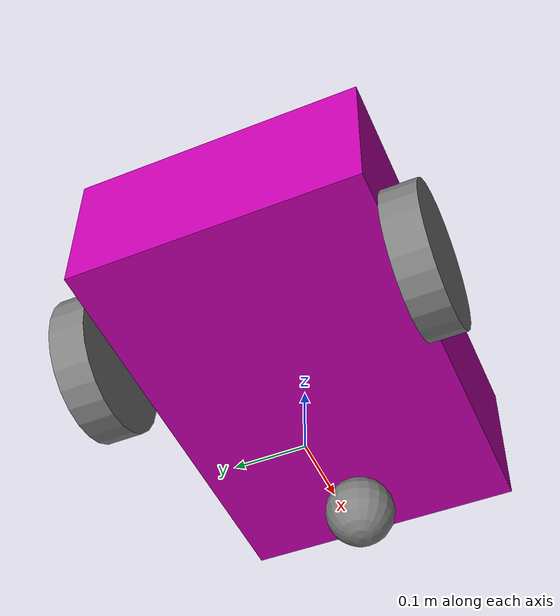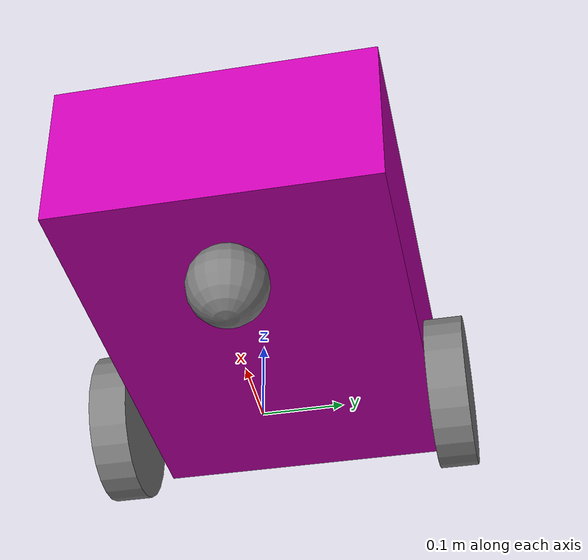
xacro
<?xml version="1.0"?>
<robot xmlns:xacro="http://www.ros.org/wiki/xacro">

#Include connected files
    <xacro:include filename="inertial_macros.xacro" />

#Define colours
    <material name="grey">
        <color rgba="0.5 0.5 0.5 1" />
    </material>

    <material name="purple">
        <color rgba="0.8 0 0.7 1" />
    </material>

    <material name="white">
        <color rgba ="1 1 1 1" />
    </material>

#LINKS

    <!-- ROBOT FOOTPRINT LINK -->
    <link name="base_footprint" />

    <!-- ROBOT BODY LINK -->
    <link name="base_link">
        <visual>
            <geometry>
                <box size ="0.6 0.4 0.2" />
            </geometry>
            <origin xyz="0 0 0.1" rpy="0 0 0" />
            <material name="purple" />
        </visual>
        <collision>
            <geometry>
                <box size ="0.6 0.4 0.2" />
            </geometry>
            <origin xyz="0 0 0.1" rpy="0 0 0" />
        </collision>
        <xacro:inertial_box mass="0.5" x="0.6" y="0.4" z="0.2">
            <origin xyz="0 0 0.1" rpy="0 0 0" />
        </xacro:inertial_box>
    </link>

    <!-- LIDAR LINK -->
    <link name="lidar_module">
        <visual>
            <geometry>
                <cylinder radius="0.09" length="0.05" />
            </geometry>
            <origin xyz="0 0 0" rpy="0 0 0" />
            <material name="white" />
        </visual>
        <collision>
            <geometry>
                <box size ="0.18 0.18 0.05" />
            </geometry>
            <origin xyz="0 0 0" rpy="0 0 0" />
        </collision>
    </link>

    <!-- LEFT WHEEL LINK -->
    <link name="left_wheel">
        <visual>
            <geometry>
                <cylinder radius="0.1" length="0.05" />
            </geometry>
            <origin xyz="0 0.025 0" rpy="1.57 0 0" />
            <material name="grey" />
        </visual>
        <collision>
            <geometry>
                <!-- use sphere collider for minimal contact with ground to eliminate wheel drift -->
                <sphere radius ="0.1" />
            </geometry>
            <origin xyz="0 0.025 0" rpy="1.57 0 0" />
        </collision>
        <xacro:inertial_cylinder mass="0.1" radius="0.1" length="0.05">
            <origin xyz="0 0.025 0" rpy="1.57 0 0" />
        </xacro:inertial_cylinder>
    </link>

    <!-- RIGHT WHEEL LINK -->
    <link name="right_wheel">
        <visual>
            <geometry>
                <cylinder radius="0.1" length="0.05" />
            </geometry>
            <origin xyz="0 -0.025 0" rpy="-1.57 0 0" />
            <material name="grey" />
        </visual>
        <collision>
            <geometry>
                <!-- use sphere colliders for minimal contact with ground to eliminate wheel drift -->
                <sphere radius="0.1" />
            </geometry>
            <origin xyz="0 -0.025 0" rpy="-1.57 0 0" />
        </collision>
        <xacro:inertial_cylinder mass="0.1" radius="0.1" length="0.05">
            <origin xyz="0 -0.025 0" rpy="-1.57 0 0" />
        </xacro:inertial_cylinder>
    </link>

    <!-- CASTER WHEEL LINK -->
    <link name="caster_wheel">
        <visual>
            <geometry>
                <sphere radius="0.05" />
            </geometry>
            <origin xyz="0 0 -0.05" rpy="0 0 0" />
            <material name="grey" />
        </visual>
        <collision>
            <geometry>
                <sphere radius="0.05" />
            </geometry>
            <origin xyz="0 0 -0.05" rpy="0 0 0" />
        </collision>
        <xacro:inertial_sphere mass="0.08" radius="0.05">
            <origin xyz="0 0 -0.05" rpy="0 0 0" />
        </xacro:inertial_sphere>
    </link>
    <gazebo reference="caster_wheel">
        <mu1 value ="0.001"/>
        <mu2 value ="0.001"/>
    </gazebo>

#JOINTS

    <!-- ROBOT BODY FOOTPRINT JOINT -->
    <joint name="base_joint" type="fixed">
        <parent link="base_footprint" />
        <child link="base_link" />
        <origin xyz="0 0 0.1" rpy="0 0 0" />
    </joint>

    <!-- LIDAR JOINT -->
    <joint name="base_lidar_module_joint" type="fixed">
        <parent link="base_link" />
        <child link="lidar_module" />
        <origin xyz="0 0 0.225" rpy="0 0 0" />
    </joint>

    <!-- LEFT WHEEL JOINT -->
    <joint name="base_left_wheel_joint" type="continuous">
        <parent link="base_link" />
        <child link="left_wheel" />
        <origin xyz="-0.15 0.2 0" rpy="0 0 0" />
        <axis xyz="0 1 0" />
    </joint>

    <!-- RIGHT WHEEL JOINT -->
    <joint name="base_right_wheel_joint" type="continuous">
        <parent link="base_link" />
        <child link="right_wheel" />
        <origin xyz="-0.15 -0.2 0" rpy="0 0 0" />
        <axis xyz="0 1 0" />
    </joint>

    <!-- CASTER WHEEL JOINT -->
    <joint name="base_caster_wheel_joint" type="fixed">
        <parent link="base_link" />
        <child link="caster_wheel" />
        <origin xyz="0.2 0 0" rpy="0 0 0" />
    </joint>

    <ros2_control name="IgnitionSystem" type="system">
        <hardware>
            <plugin>ign_ros2_control/IgnitionSystem</plugin>
        </hardware>

        <joint name="base_left_wheel_joint">
            <command_interface name="velocity">
                <param name="min">-10 </param>
                <param name="max">10 </param>
            </command_interface>
            <state_interface name ="velocity"/>
            <state_interface name ="position"/>
        </joint>

        <joint name="base_right_wheel_joint">
            <command_interface name="velocity">
                <param name="min">-10 </param>
                <param name="max">10 </param>
            </command_interface>
            <state_interface name ="velocity"/>
            <state_interface name ="position"/>
        </joint>
    </ros2_control>

    <gazebo>
        <plugin filename="libign_ros2_control-system.so" name="ign_ros2_control::IgnitionROS2ControlPlugin">
            <robot_param>robot_description</robot_param>
            <robot_param_node>robot_state_publisher</robot_param_node>
            <parameters>$(find testbot)/config/controllers.yaml</parameters>

        </plugin>
    </gazebo>
</robot>
